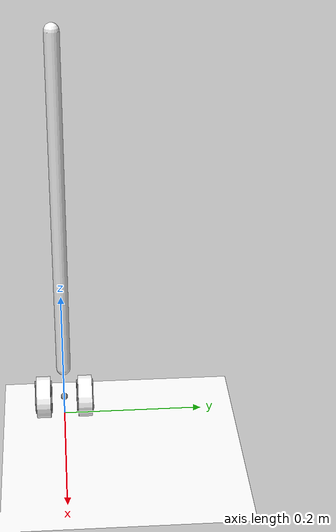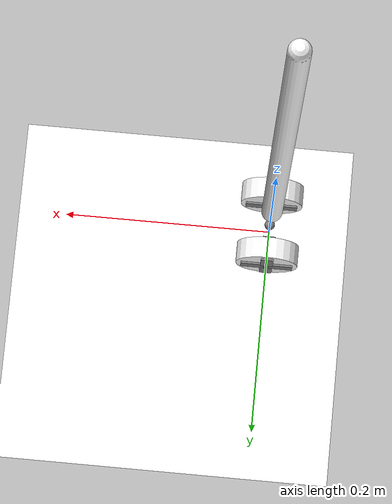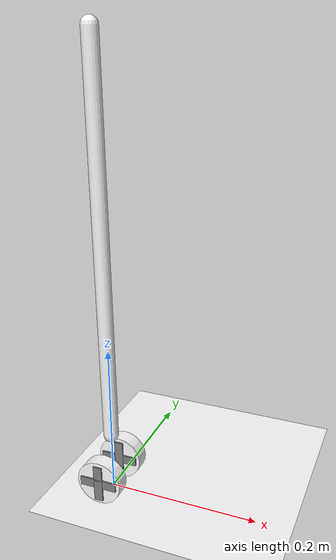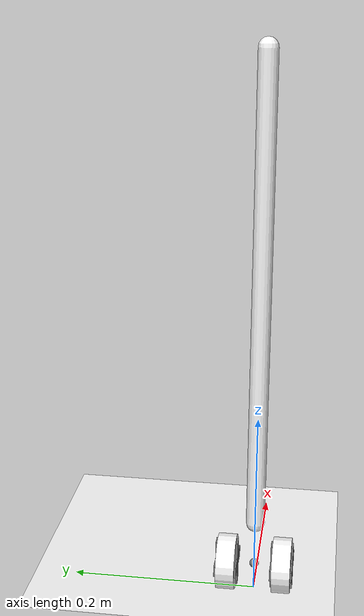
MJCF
<mujoco>
  <!-- This file specifies things in degrees. The code/simulator uses radians -->
  <compiler autolimits="true" angle="degree"/>

  <asset>
    <texture name="grid" type="2d" builtin="checker" width="512" height="512" rgb1=".1 .2 .3" rgb2=".2 .3 .4"/>
    <material name="grid" texture="grid" texrepeat="1 1" texuniform="true" reflectance=".05"/>
    <mesh name="chasis" scale=".01 .006 .0015"
      vertex=" 9   2   0
              -10  10  10
               9  -2   0
               10  3  -10
               10 -3  -10
              -8   10 -10
              -10 -10  10
              -8  -10 -10
              -5   0   20"/>
  </asset>

  <visual>
    <headlight ambient="1 1 1" />

  </visual>

  <option timestep="0.001" integrator="RK4"/>

  <default>
    <geom rgba="1. 1. 1. 1."/>
    <joint damping=".0001"/>
    <default class="wheel">
      <geom type="cylinder" size=".03 .01"/>
    </default>
    <default class="decor">
      <site type="box"/>
    </default>
  </default>

  <worldbody>
    <geom type="plane" size="50 50 .01" material="grid"/>
    <body name="car" pos="0 0 .03" euler="0 -0.5 0">
        <freejoint/>
        <body name="left wheel" pos=".0 .03 0" zaxis="0 1 0">
            <joint name="left"/>
            <geom class="wheel" mass="0.25"/>
            <site class="decor" size=".006 .025 .012"/>
            <site class="decor" size=".025 .006 .012"/>
        </body>
        <body name="right wheel" pos=".0 -.03 0" zaxis="0 1 0">
            <joint name="right"/>
            <site name="torque_sensor_mnt" pos="0 0 0"/>
            <geom class="wheel" mass="0.25"/>
            <site class="decor" size=".006 .025 .012"/>
            <site class="decor" size=".025 .006 .012"/>
        </body>

        <site name="wheelbase" pos="0 0 0"/>

        <body name="beam" pos="0 0 .4">
            <!--density of the rod is ten times smaller than other objects (e.g. the ball) for a better point mass approximation-->
            <geom name="rod" pos="0 0.0 -0.1" type="capsule" size=".01 .25" mass="3.0"/>
            <body name="ballbody" pos="0 0 0.1">
                <site name="accelerometer_center" pos="0 0 0" rgba="0. 1. 0. 1."/>
            </body>
        </body>

    </body>
  </worldbody>

  <tendon>
    <fixed name="forward">
      <joint joint="left" coef="1"/>
      <joint joint="right" coef="1"/>
    </fixed>
    <fixed name="turn">
      <joint joint="left" coef="-.5"/>
      <joint joint="right" coef=".5"/>
    </fixed>
  </tendon>

  <actuator>
    <motor name="forward" tendon="forward" ctrlrange="-100 100"/>
  </actuator>

  <sensor>
    <accelerometer name="accelerometer" site="accelerometer_center" noise="0.0"/>
    <framequat name="angle_sensor" objtype="site" objname="accelerometer_center"/>
    <framepos name="base_position" objtype="site" objname="wheelbase"/>
    <framelinvel name="base_velocity" objtype="site" objname="wheelbase"/>
    <frameangvel name="base_ang_velocity" objtype="site" objname="accelerometer_center"/>
    <torque name="wheel_torque" site="torque_sensor_mnt"/>
    <jointvel name="wheel_vel" joint="right"/>
  </sensor>
</mujoco>
